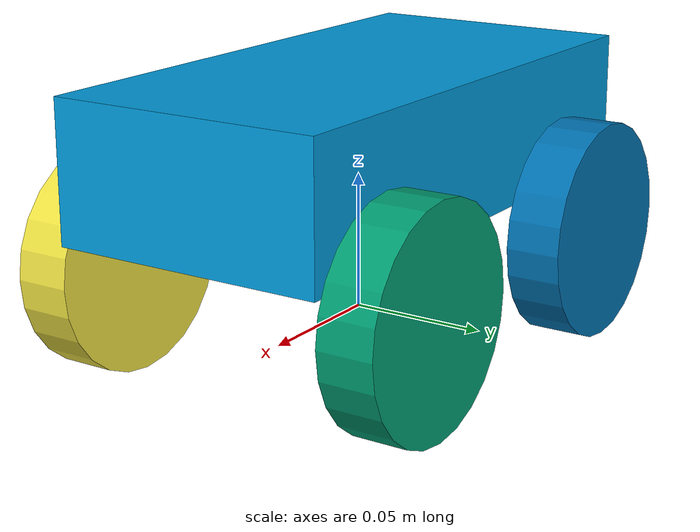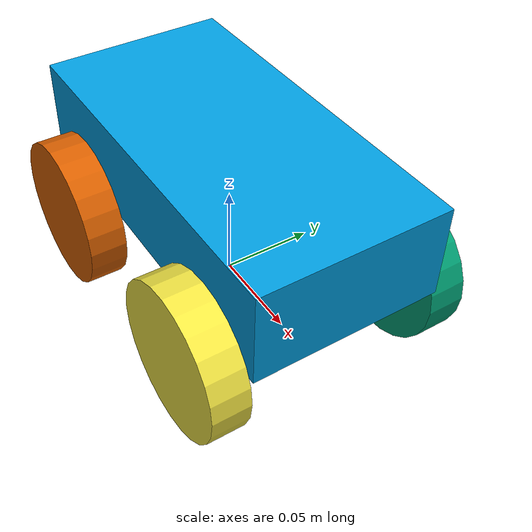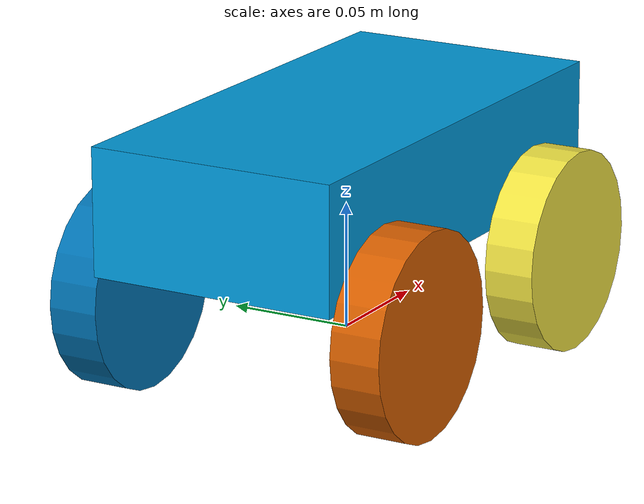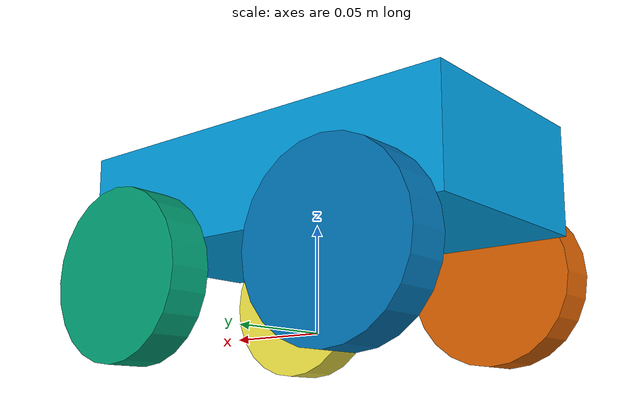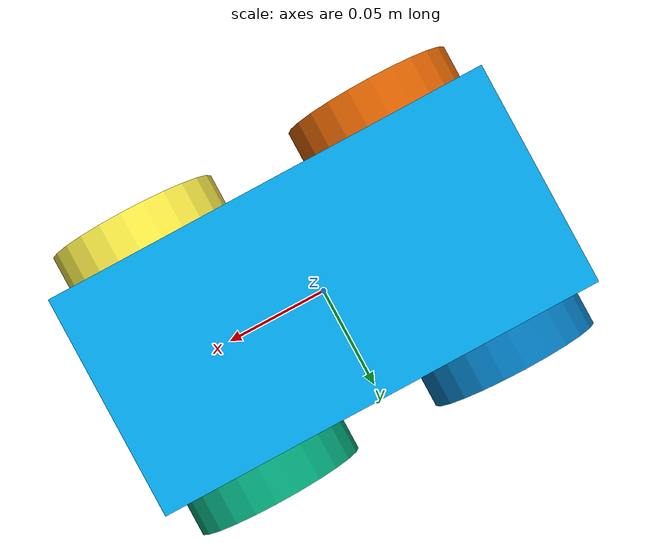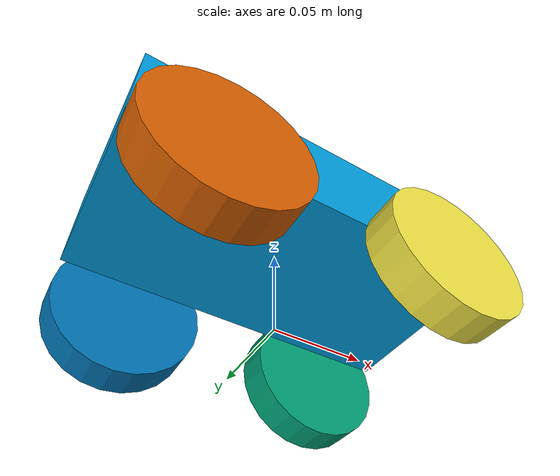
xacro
<?xml version="1.0"?>
<robot name="mecanum_vehicle" xmlns:xacro="http://www.ros.org/wiki/xacro" xmlns:ignition="http://gazebosim.org/schema">
<!-- Robot Dimensions Parameters -->
<xacro:property name="robot_x" value="0.2" /> <!-- Chassis length -->
<xacro:property name="robot_y" value="0.1" /> <!-- Chassis width -->
<xacro:property name="robot_z" value="0.05" /> <!-- Chassis height (thickness) -->
<xacro:property name="chassis_mass" value="4.5" />
<!-- Chassis Inertia Parameters -->
<xacro:property name="ixx" value="0.0046875" />
<xacro:property name="iyy" value="0.0159375" />
<xacro:property name="izz" value="0.01875" />
<!-- Wheel Parameters -->
<xacro:property name="wheel_radius" value="0.04" />
<xacro:property name="wheel_width" value="0.02" />
<xacro:property name="wheel_mass" value="0.2" />

<!-- Wheel Inertia Parameters -->
<xacro:property name="wheel_ixx" value="0.000800" />
<xacro:property name="wheel_iyy" value="0.000433" />
<xacro:property name="wheel_izz" value="0.000433" />
<!-- We place the CHASSIS center higher so the wheels touch ground at z=0. -->
<!-- chassis_center_z = wheel_radius + robot_z/2 -->
<xacro:property name="chassis_center_z" value="${wheel_radius + (robot_z/2)}" />
<!-- Calculated Joint Positions (relative to CHASSIS origin) -->
<xacro:property name="front_x" value="${(robot_x / 2) - wheel_radius}" />
<xacro:property name="rear_x" value="${(-robot_x / 2) + wheel_radius}" />
<xacro:property name="left_y" value="${(robot_y / 2) + (wheel_width / 2)}" />
<xacro:property name="right_y" value="${(-robot_y / 2) - (wheel_width / 2)}" />
<!-- joint z is set so wheel center absolute z == wheel_radius (wheel touches ground) -->
<!-- joint z relative to chassis origin = -robot_z/2 -->
<xacro:property name="wheel_joint_z" value="${robot_z/2}"/>

<!-- Crate length -->
<xacro:property name="crate_length" value="0.15" />

<link name="base_link">
</link>

<joint name="base_joint" type="fixed">
  <parent link="base_link"/>
  <child link="chassis"/>
  <origin xyz="0 0 0" rpy="0 0 0"/>
</joint>
<!-- Base chassis -->
<link name="chassis">
  <inertial>
    <mass value="${chassis_mass}"/>
    <inertia
    ixx="${ixx}"
    ixy="0.0"
    ixz="0.0"
    iyy="${iyy}"
    iyz="0.0"
    izz="${izz}"/>
    </inertial>
  <visual>
    <origin rpy="0 0 0" xyz="0 0 ${chassis_center_z}"/>
    <geometry>
      <box size="${robot_x} ${robot_y} ${robot_z}"/>
    </geometry>
    <material name="blue">
      <color rgba="0.0 0.612 0.867 1"/>
    </material>
  </visual>
  <collision>
    <origin rpy="0 0 0" xyz="0 0 ${chassis_center_z}"/>
    <geometry>
      <box size="${robot_x} ${robot_y} ${robot_z}"/>
    </geometry>
  </collision>
</link>

<!-- Wheel Macro -->
<xacro:macro name="wheel" params="name color">
  <link name="${name}">
    <inertial>
      <mass value="${wheel_mass}"/>
      <inertia ixx="${wheel_ixx}" ixy="0.0" ixz="0.0" iyy="${wheel_iyy}" iyz="0.0" izz="${wheel_izz}"/>
    </inertial>
    <visual>
      <geometry>
        <cylinder radius="${wheel_radius}" length="${wheel_width}"/>
      </geometry>
    </visual>
    <collision>
      <origin rpy="0 0 0" xyz="0 0 0"/>
      <geometry>
        <cylinder radius="${wheel_radius}" length="${wheel_width}"/>
      </geometry>
    </collision>
  </link>
</xacro:macro>

<!-- Create Wheels -->
<xacro:wheel name="front_left_wheel" color="red"/>
<xacro:wheel name="front_right_wheel" color="red"/>
<xacro:wheel name="rear_left_wheel" color="dark_blue"/>
<xacro:wheel name="rear_right_wheel" color="dark_blue"/>

<!-- Wheel Joint Macro -->
<xacro:macro name="wheel_joint" params="name parent child x y z">
  <joint name="${name}" type="continuous">
    <parent link="${parent}"/>
    <child link="${child}"/>
    <origin xyz="${x} ${y} ${z}" rpy="1.57079 0 0"/>
    <axis xyz="0 0 1"/>
    <dynamics damping="0.2"/>
  </joint>
</xacro:macro>

<!-- Create Wheel Joints -->
<xacro:wheel_joint name="front_left_wheel_joint" parent="chassis" child="front_left_wheel"
x="${front_x}" y="${left_y}" z="${wheel_joint_z}"/>
<xacro:wheel_joint name="front_right_wheel_joint" parent="chassis" child="front_right_wheel"
x="${front_x}" y="${right_y}" z="${wheel_joint_z}"/>
<xacro:wheel_joint name="rear_left_wheel_joint" parent="chassis" child="rear_left_wheel"
x="${rear_x}" y="${left_y}" z="${wheel_joint_z}"/>
<xacro:wheel_joint name="rear_right_wheel_joint" parent="chassis" child="rear_right_wheel"
x="${rear_x}" y="${right_y}" z="${wheel_joint_z}"/>

<!-- Gazebo extension used to emulate mecanum wheel frictions -->
<xacro:macro name="gazebo" params="name value">
  <gazebo reference="${name}">
    <collision>
      <surface>
        <friction>
          <ode>
            <mu>2.0</mu>
            <mu2>0.0</mu2>
            <!-- We express friction direction in CHASSIS frame to avoid confusion -->
            <fdir1 ignition:expressed_in="chassis">${value}</fdir1>
          </ode>
        </friction>
      </surface>
    </collision>
  </gazebo>
</xacro:macro>

<ros2_control name="IgnitionSystem" type="system">
    <hardware>
      <plugin>ign_ros2_control/IgnitionSystem</plugin>
    </hardware>

    <joint name="front_left_wheel_joint">
      <command_interface name="velocity">
        <param name="min">-10</param>
        <param name="max">10</param>
      </command_interface>
      <state_interface name="position"/>
      <state_interface name="velocity"/>
    </joint>

    <joint name="front_right_wheel_joint">
      <command_interface name="velocity">
        <param name="min">-10</param>
        <param name="max">10</param>
      </command_interface>
      <state_interface name="position"/>
      <state_interface name="velocity"/>
    </joint>

    <joint name="rear_left_wheel_joint">
      <command_interface name="velocity">
        <param name="min">-10</param>
        <param name="max">10</param>
      </command_interface>
      <state_interface name="position"/>
      <state_interface name="velocity"/>
    </joint>

    <joint name="rear_right_wheel_joint">
      <command_interface name="velocity">
        <param name="min">-10</param>
        <param name="max">10</param>
      </command_interface>
      <state_interface name="position"/>
      <state_interface name="velocity"/>
    </joint>
  </ros2_control>

  <gazebo>
    <plugin filename="libign_ros2_control-system.so" name="ign_ros2_control::IgnitionROS2ControlPlugin">
      <parameters>$(find mam_eurobot_2026)/config/mecanum/mecanum_drive_controller.yaml</parameters>
    </plugin>
  </gazebo>

<!-- Chassis-frame mecanum directions (X forward, Y left) -->
<xacro:gazebo name="front_left_wheel"  value="1 -1 0"/>
<xacro:gazebo name="front_right_wheel" value="1 1 0"/>
<xacro:gazebo name="rear_left_wheel"   value="1 1 0"/>
<xacro:gazebo name="rear_right_wheel"  value="1 -1 0"/>

</robot>
